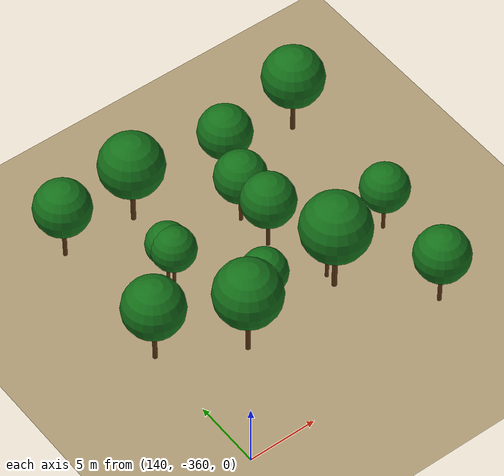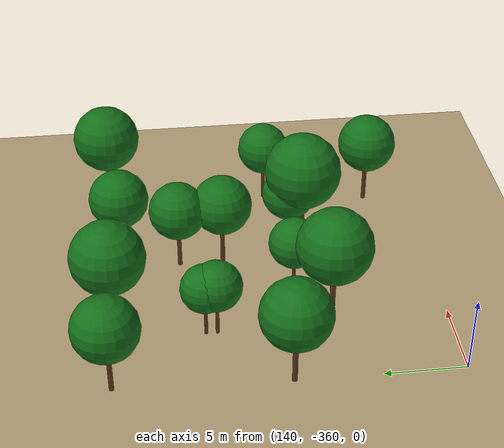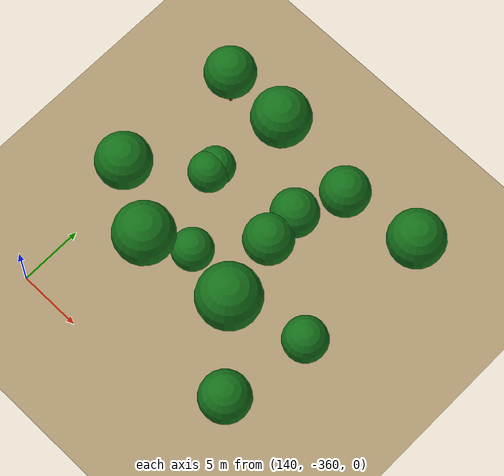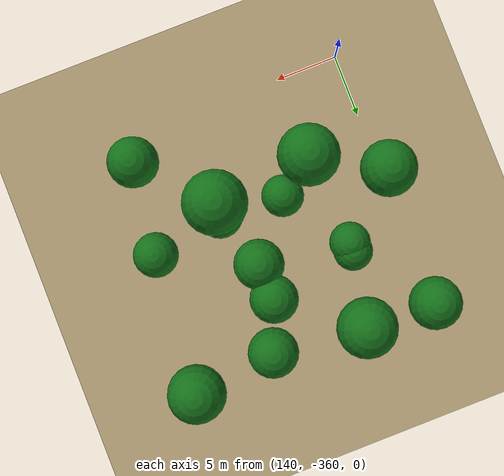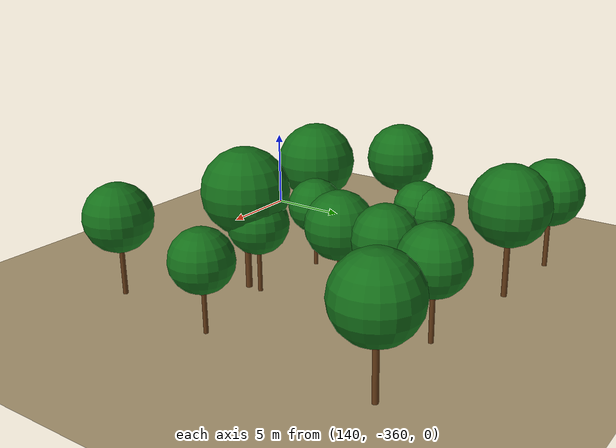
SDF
<sdf version="1.9">
 <world name="crossroad_world">
  <model name="ground_plane">
   <static>true</static>
   <pose>0 0 -0.05 0 0 0</pose>
   <link name="link">
    <collision name="collision">
     <geometry><plane><normal>0 0 1</normal><size>10000 10000</size></plane></geometry>
    </collision>
    <visual name="visual">
     <geometry><plane><normal>0 0 1</normal><size>15000 15000</size></plane></geometry>
     <material><ambient>0.68 0.60 0.45 1</ambient><diffuse>0.68 0.60 0.45 1</diffuse></material>
    </visual>
   </link>
  </model>
  <model name="tree_202">
   <static>true</static>
   <pose>151.628 -346.634 0 0 0 0</pose>
   <link name="link">
    <visual name="trunk">
     <pose>0 0 1.606 0 0 0</pose>
     <geometry><cylinder><radius>0.140</radius><length>3.211</length></cylinder></geometry>
     <material><ambient>0.38 0.22 0.08 1</ambient><diffuse>0.38 0.22 0.08 1</diffuse></material>
    </visual>
    <visual name="canopy">
     <pose>0 0 4.450 0 0 0</pose>
     <geometry><sphere><radius>1.907</radius></sphere></geometry>
     <material><ambient>0.08 0.44 0.10 1</ambient><diffuse>0.08 0.44 0.10 1</diffuse></material>
    </visual>
    <collision name="col">
     <pose>0 0 1.606 0 0 0</pose>
     <geometry><cylinder><radius>0.140</radius><length>3.211</length></cylinder></geometry>
    </collision>
   </link>
  </model>
  <model name="tree_203">
   <static>true</static>
   <pose>159.258 -339.445 0 0 0 0</pose>
   <link name="link">
    <visual name="trunk">
     <pose>0 0 1.845 0 0 0</pose>
     <geometry><cylinder><radius>0.161</radius><length>3.690</length></cylinder></geometry>
     <material><ambient>0.38 0.22 0.08 1</ambient><diffuse>0.38 0.22 0.08 1</diffuse></material>
    </visual>
    <visual name="canopy">
     <pose>0 0 5.114 0 0 0</pose>
     <geometry><sphere><radius>2.191</radius></sphere></geometry>
     <material><ambient>0.08 0.44 0.10 1</ambient><diffuse>0.08 0.44 0.10 1</diffuse></material>
    </visual>
    <collision name="col">
     <pose>0 0 1.845 0 0 0</pose>
     <geometry><cylinder><radius>0.161</radius><length>3.690</length></cylinder></geometry>
    </collision>
   </link>
  </model>
  <model name="tree_206">
   <static>true</static>
   <pose>140.502 -339.234 0 0 0 0</pose>
   <link name="link">
    <visual name="trunk">
     <pose>0 0 1.681 0 0 0</pose>
     <geometry><cylinder><radius>0.147</radius><length>3.362</length></cylinder></geometry>
     <material><ambient>0.38 0.22 0.08 1</ambient><diffuse>0.38 0.22 0.08 1</diffuse></material>
    </visual>
    <visual name="canopy">
     <pose>0 0 4.659 0 0 0</pose>
     <geometry><sphere><radius>1.996</radius></sphere></geometry>
     <material><ambient>0.08 0.44 0.10 1</ambient><diffuse>0.08 0.44 0.10 1</diffuse></material>
    </visual>
    <collision name="col">
     <pose>0 0 1.681 0 0 0</pose>
     <geometry><cylinder><radius>0.147</radius><length>3.362</length></cylinder></geometry>
    </collision>
   </link>
  </model>
  <model name="tree_208">
   <static>true</static>
   <pose>145.284 -352.786 0 0 0 0</pose>
   <link name="link">
    <visual name="trunk">
     <pose>0 0 1.983 0 0 0</pose>
     <geometry><cylinder><radius>0.173</radius><length>3.965</length></cylinder></geometry>
     <material><ambient>0.38 0.22 0.08 1</ambient><diffuse>0.38 0.22 0.08 1</diffuse></material>
    </visual>
    <visual name="canopy">
     <pose>0 0 5.496 0 0 0</pose>
     <geometry><sphere><radius>2.354</radius></sphere></geometry>
     <material><ambient>0.08 0.44 0.10 1</ambient><diffuse>0.08 0.44 0.10 1</diffuse></material>
    </visual>
    <collision name="col">
     <pose>0 0 1.983 0 0 0</pose>
     <geometry><cylinder><radius>0.173</radius><length>3.965</length></cylinder></geometry>
    </collision>
   </link>
  </model>
  <model name="tree_209">
   <static>true</static>
   <pose>152.963 -351.995 0 0 0 0</pose>
   <link name="link">
    <visual name="trunk">
     <pose>0 0 2.071 0 0 0</pose>
     <geometry><cylinder><radius>0.181</radius><length>4.143</length></cylinder></geometry>
     <material><ambient>0.38 0.22 0.08 1</ambient><diffuse>0.38 0.22 0.08 1</diffuse></material>
    </visual>
    <visual name="canopy">
     <pose>0 0 5.742 0 0 0</pose>
     <geometry><sphere><radius>2.460</radius></sphere></geometry>
     <material><ambient>0.08 0.44 0.10 1</ambient><diffuse>0.08 0.44 0.10 1</diffuse></material>
    </visual>
    <collision name="col">
     <pose>0 0 2.071 0 0 0</pose>
     <geometry><cylinder><radius>0.181</radius><length>4.143</length></cylinder></geometry>
    </collision>
   </link>
  </model>
  <model name="tree_213">
   <static>true</static>
   <pose>144.663 -344.997 0 0 0 0</pose>
   <link name="link">
    <visual name="trunk">
     <pose>0 0 1.265 0 0 0</pose>
     <geometry><cylinder><radius>0.111</radius><length>2.531</length></cylinder></geometry>
     <material><ambient>0.38 0.22 0.08 1</ambient><diffuse>0.38 0.22 0.08 1</diffuse></material>
    </visual>
    <visual name="canopy">
     <pose>0 0 3.508 0 0 0</pose>
     <geometry><sphere><radius>1.503</radius></sphere></geometry>
     <material><ambient>0.08 0.44 0.10 1</ambient><diffuse>0.08 0.44 0.10 1</diffuse></material>
    </visual>
    <collision name="col">
     <pose>0 0 1.265 0 0 0</pose>
     <geometry><cylinder><radius>0.111</radius><length>2.531</length></cylinder></geometry>
    </collision>
   </link>
  </model>
  <model name="tree_217">
   <static>true</static>
   <pose>158.582 -350.091 0 0 0 0</pose>
   <link name="link">
    <visual name="trunk">
     <pose>0 0 1.443 0 0 0</pose>
     <geometry><cylinder><radius>0.126</radius><length>2.886</length></cylinder></geometry>
     <material><ambient>0.38 0.22 0.08 1</ambient><diffuse>0.38 0.22 0.08 1</diffuse></material>
    </visual>
    <visual name="canopy">
     <pose>0 0 3.999 0 0 0</pose>
     <geometry><sphere><radius>1.713</radius></sphere></geometry>
     <material><ambient>0.08 0.44 0.10 1</ambient><diffuse>0.08 0.44 0.10 1</diffuse></material>
    </visual>
    <collision name="col">
     <pose>0 0 1.443 0 0 0</pose>
     <geometry><cylinder><radius>0.126</radius><length>2.886</length></cylinder></geometry>
    </collision>
   </link>
  </model>
  <model name="tree_223">
   <static>true</static>
   <pose>157.619 -357.119 0 0 0 0</pose>
   <link name="link">
    <visual name="trunk">
     <pose>0 0 1.636 0 0 0</pose>
     <geometry><cylinder><radius>0.143</radius><length>3.273</length></cylinder></geometry>
     <material><ambient>0.38 0.22 0.08 1</ambient><diffuse>0.38 0.22 0.08 1</diffuse></material>
    </visual>
    <visual name="canopy">
     <pose>0 0 4.536 0 0 0</pose>
     <geometry><sphere><radius>1.943</radius></sphere></geometry>
     <material><ambient>0.08 0.44 0.10 1</ambient><diffuse>0.08 0.44 0.10 1</diffuse></material>
    </visual>
    <collision name="col">
     <pose>0 0 1.636 0 0 0</pose>
     <geometry><cylinder><radius>0.143</radius><length>3.273</length></cylinder></geometry>
    </collision>
   </link>
  </model>
  <model name="tree_225">
   <static>true</static>
   <pose>153.006 -340.140 0 0 0 0</pose>
   <link name="link">
    <visual name="trunk">
     <pose>0 0 1.603 0 0 0</pose>
     <geometry><cylinder><radius>0.140</radius><length>3.206</length></cylinder></geometry>
     <material><ambient>0.38 0.22 0.08 1</ambient><diffuse>0.38 0.22 0.08 1</diffuse></material>
    </visual>
    <visual name="canopy">
     <pose>0 0 4.443 0 0 0</pose>
     <geometry><sphere><radius>1.903</radius></sphere></geometry>
     <material><ambient>0.08 0.44 0.10 1</ambient><diffuse>0.08 0.44 0.10 1</diffuse></material>
    </visual>
    <collision name="col">
     <pose>0 0 1.603 0 0 0</pose>
     <geometry><cylinder><radius>0.140</radius><length>3.206</length></cylinder></geometry>
    </collision>
   </link>
  </model>
  <model name="tree_226">
   <static>true</static>
   <pose>144.656 -345.690 0 0 0 0</pose>
   <link name="link">
    <visual name="trunk">
     <pose>0 0 1.319 0 0 0</pose>
     <geometry><cylinder><radius>0.115</radius><length>2.638</length></cylinder></geometry>
     <material><ambient>0.38 0.22 0.08 1</ambient><diffuse>0.38 0.22 0.08 1</diffuse></material>
    </visual>
    <visual name="canopy">
     <pose>0 0 3.657 0 0 0</pose>
     <geometry><sphere><radius>1.567</radius></sphere></geometry>
     <material><ambient>0.08 0.44 0.10 1</ambient><diffuse>0.08 0.44 0.10 1</diffuse></material>
    </visual>
    <collision name="col">
     <pose>0 0 1.319 0 0 0</pose>
     <geometry><cylinder><radius>0.115</radius><length>2.638</length></cylinder></geometry>
    </collision>
   </link>
  </model>
  <model name="tree_228">
   <static>true</static>
   <pose>151.518 -343.822 0 0 0 0</pose>
   <link name="link">
    <visual name="trunk">
     <pose>0 0 1.548 0 0 0</pose>
     <geometry><cylinder><radius>0.135</radius><length>3.096</length></cylinder></geometry>
     <material><ambient>0.38 0.22 0.08 1</ambient><diffuse>0.38 0.22 0.08 1</diffuse></material>
    </visual>
    <visual name="canopy">
     <pose>0 0 4.291 0 0 0</pose>
     <geometry><sphere><radius>1.838</radius></sphere></geometry>
     <material><ambient>0.08 0.44 0.10 1</ambient><diffuse>0.08 0.44 0.10 1</diffuse></material>
    </visual>
    <collision name="col">
     <pose>0 0 1.548 0 0 0</pose>
     <geometry><cylinder><radius>0.135</radius><length>3.096</length></cylinder></geometry>
    </collision>
   </link>
  </model>
  <model name="tree_234">
   <static>true</static>
   <pose>145.900 -339.436 0 0 0 0</pose>
   <link name="link">
    <visual name="trunk">
     <pose>0 0 1.925 0 0 0</pose>
     <geometry><cylinder><radius>0.168</radius><length>3.849</length></cylinder></geometry>
     <material><ambient>0.38 0.22 0.08 1</ambient><diffuse>0.38 0.22 0.08 1</diffuse></material>
    </visual>
    <visual name="canopy">
     <pose>0 0 5.335 0 0 0</pose>
     <geometry><sphere><radius>2.286</radius></sphere></geometry>
     <material><ambient>0.08 0.44 0.10 1</ambient><diffuse>0.08 0.44 0.10 1</diffuse></material>
    </visual>
    <collision name="col">
     <pose>0 0 1.925 0 0 0</pose>
     <geometry><cylinder><radius>0.168</radius><length>3.849</length></cylinder></geometry>
    </collision>
   </link>
  </model>
  <model name="tree_237">
   <static>true</static>
   <pose>153.034 -351.109 0 0 0 0</pose>
   <link name="link">
    <visual name="trunk">
     <pose>0 0 1.464 0 0 0</pose>
     <geometry><cylinder><radius>0.128</radius><length>2.929</length></cylinder></geometry>
     <material><ambient>0.38 0.22 0.08 1</ambient><diffuse>0.38 0.22 0.08 1</diffuse></material>
    </visual>
    <visual name="canopy">
     <pose>0 0 4.059 0 0 0</pose>
     <geometry><sphere><radius>1.739</radius></sphere></geometry>
     <material><ambient>0.08 0.44 0.10 1</ambient><diffuse>0.08 0.44 0.10 1</diffuse></material>
    </visual>
    <collision name="col">
     <pose>0 0 1.464 0 0 0</pose>
     <geometry><cylinder><radius>0.128</radius><length>2.929</length></cylinder></geometry>
    </collision>
   </link>
  </model>
  <model name="tree_239">
   <static>true</static>
   <pose>140.092 -349.766 0 0 0 0</pose>
   <link name="link">
    <visual name="trunk">
     <pose>0 0 1.812 0 0 0</pose>
     <geometry><cylinder><radius>0.159</radius><length>3.624</length></cylinder></geometry>
     <material><ambient>0.38 0.22 0.08 1</ambient><diffuse>0.38 0.22 0.08 1</diffuse></material>
    </visual>
    <visual name="canopy">
     <pose>0 0 5.022 0 0 0</pose>
     <geometry><sphere><radius>2.152</radius></sphere></geometry>
     <material><ambient>0.08 0.44 0.10 1</ambient><diffuse>0.08 0.44 0.10 1</diffuse></material>
    </visual>
    <collision name="col">
     <pose>0 0 1.812 0 0 0</pose>
     <geometry><cylinder><radius>0.159</radius><length>3.624</length></cylinder></geometry>
    </collision>
   </link>
  </model>
  <model name="tree_241">
   <static>true</static>
   <pose>148.112 -350.810 0 0 0 0</pose>
   <link name="link">
    <visual name="trunk">
     <pose>0 0 1.356 0 0 0</pose>
     <geometry><cylinder><radius>0.119</radius><length>2.713</length></cylinder></geometry>
     <material><ambient>0.38 0.22 0.08 1</ambient><diffuse>0.38 0.22 0.08 1</diffuse></material>
    </visual>
    <visual name="canopy">
     <pose>0 0 3.760 0 0 0</pose>
     <geometry><sphere><radius>1.611</radius></sphere></geometry>
     <material><ambient>0.08 0.44 0.10 1</ambient><diffuse>0.08 0.44 0.10 1</diffuse></material>
    </visual>
    <collision name="col">
     <pose>0 0 1.356 0 0 0</pose>
     <geometry><cylinder><radius>0.119</radius><length>2.713</length></cylinder></geometry>
    </collision>
   </link>
  </model>
 </world>
</sdf>
